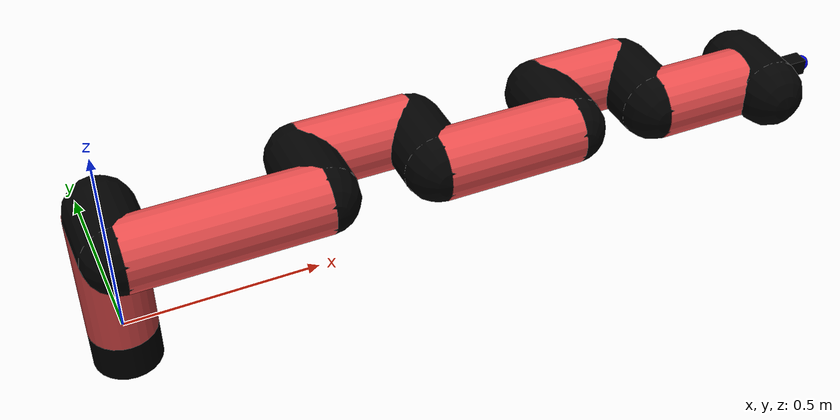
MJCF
<mujoco model="manipulator">
		<compiler angle="degree" coordinate="local" inertiafromgeom="auto" meshdir="meshes/"/>
		<option gravity="0 0 0" integrator="RK4" iterations="30" timestep="0.01"/>

		<default>
		<joint armature="1" limited="true" stiffness="10" damping="15" frictionloss="5.0"/>
		<geom conaffinity="1" condim="3" contype="1" friction=".5 .1 .1" margin="0.002"/>
		<motor ctrllimited="true"/>
		<position ctrllimited="true"/>
		</default>

		<asset>
		<texture builtin="gradient" height="100" rgb1="1.0 1.0 1.0" rgb2="1.0 1.0 1.0" type="skybox" width="100"/>
		<texture builtin="flat" height="32" name="arm_tex" rgb1="0.9 0.3 0.3" type="2d" width="32"/>
		<texture builtin="flat" height="32" name="gripper_tex" rgb1="0.0 0.0 0.0" type="cube" width="32"/>

		<material name="arm_mat" shininess="0.1" specular="0.1" texture="arm_tex"/>
		<material name="gripper_mat" shininess="1" specular="1" texture="gripper_tex"/>
		</asset>

		<worldbody>
		<light cutoff="45" diffuse=".8 .8 .8" dir="0 0.16 -1" directional="false" name="light" pos="0 -2.0 8.0" specular="0.3 0.3 0.3"/>

		<body name="base_link" pos="0 0 -0.1">
		<geom fromto="0 0 0 0 0 0.1" material="arm_mat" name="base_link" rgba="0.0 0.0 0.0 1" size="0.085" type="cylinder"/>
		</body>

		<body name="l1" pos="0 0 0">
<geom fromto="0 0 0 0 0 0.35" material="arm_mat" name="l1" rgba="0.9 0.3 0.3 1" size="0.085" type="cylinder"/>
<geom fromto="0 0 0.35 0 -0.16 0.35" material="arm_mat" name="l1_ex" rgba="0.0 0.0 0.0 1" size="0.085" type="capsule"/>
<joint axis="0 0 1" name="j1" pos="0 0 0" range="-90 90" damping="22.86" frictionloss="10.59"/>

<body name="l2" pos="0 -0.16 0.35">
<geom fromto="0 0 0 0.47 0 0" material="arm_mat" name="l2" rgba="0.9 0.3 0.3 1" size="0.085" type="cylinder"/>
<geom fromto="0.47 0 0 0.47 0.16 0" material="arm_mat" name="l2_ex" rgba="0.0 0.0 0.0 1" size="0.085" type="capsule"/>
<joint axis="0.0 1.0 0.0" name="j2" pos="0 0 0" range="-90 60" damping="24.37" frictionloss="10.37"/>

<body name="l3" pos="0.47 0.16 0">
<geom fromto="0 0 0 0.28 0 0" material="arm_mat" name="l3" rgba="0.9 0.3 0.3 1" size="0.085" type="cylinder"/>
<geom fromto="0.28 0 0 0.28 -0.16 0" material="arm_mat" name="l3_ex" rgba="0.0 0.0 0.0 1" size="0.085" type="capsule"/>
<joint axis="0.0 1.0 0.0" name="j3" pos="0 0 0" range="-30 60" damping="29.99" frictionloss="8.57"/>

<body name="l4" pos="0.28 -0.16 0">
<geom fromto="0 0 0 0.35 0 0" material="arm_mat" name="l4" rgba="0.9 0.3 0.3 1" size="0.085" type="cylinder"/>
<geom fromto="0.35 0 0 0.35 0.16 0" material="arm_mat" name="l4_ex" rgba="0.0 0.0 0.0 1" size="0.085" type="capsule"/>
<joint axis="0.0 1.0 0.0" name="j4" pos="0 0 0" range="-30 60" damping="29.58" frictionloss="10.21"/>

<body name="l5" pos="0.35 0.16 0">
<geom fromto="0 0 0 0.23 0 0" material="arm_mat" name="l5" rgba="0.9 0.3 0.3 1" size="0.085" type="cylinder"/>
<geom fromto="0.23 0 0 0.23 -0.16 0" material="arm_mat" name="l5_ex" rgba="0.0 0.0 0.0 1" size="0.085" type="capsule"/>
<joint axis="0.0 1.0 0.0" name="j5" pos="0 0 0" range="-30 60" damping="29.58" frictionloss="8.75"/>

<body name="l6" pos="0.23 -0.16 0">
<geom fromto="0 0 0 0.24 0 0" material="arm_mat" name="l6" rgba="0.9 0.3 0.3 1" size="0.085" type="cylinder"/>
<joint axis="0.0 1.0 0.0" name="j6" pos="0 0 0" range="-30 60" damping="29.29" frictionloss="10.08"/>

<body name="gripper" pos="0.24 0 0">
<geom fromto="0.05 -0.07 0 0.05 0.07 0" material="gripper_mat" name="gripper" rgba="0.0 0.0 0.0 1" size="0.085" type="capsule"/><joint axis="1 0 0" name="j7" pos="0 0 0" range="-90 90" damping="15" frictionloss="5.0"/><body name="finger" pos="0.1 0 0">
<geom fromto="0 0.0 0 0.1 0.0 0" material="gripper_mat" name="finger" rgba="0.0 0.0 0.0 1" size="0.020 0.06 0.06" type="box"/>
</body>
<site name="current" pos="0.2 0. 0.0" rgba="0. 0. 1.0 1" size="0.02" type="sphere"/>
</body>
</body>
</body>
</body>
</body>
</body>
</body>
</worldbody>
<actuator>
<motor ctrllimited="true" ctrlrange="-1.0 1.0" joint="j1" gear="94.34"/>
<motor ctrllimited="true" ctrlrange="-1.0 1.0" joint="j2" gear="60.66"/>
<motor ctrllimited="true" ctrlrange="-1.0 1.0" joint="j3" gear="83.42"/>
<motor ctrllimited="true" ctrlrange="-1.0 1.0" joint="j4" gear="67.57"/>
<motor ctrllimited="true" ctrlrange="-1.0 1.0" joint="j5" gear="85.25"/>
<motor ctrllimited="true" ctrlrange="-1.0 1.0" joint="j6" gear="91.35"/>
<motor ctrllimited="true" ctrlrange="-1.0 1.0" joint="j7" gear="80"/>
</actuator>
</mujoco>
